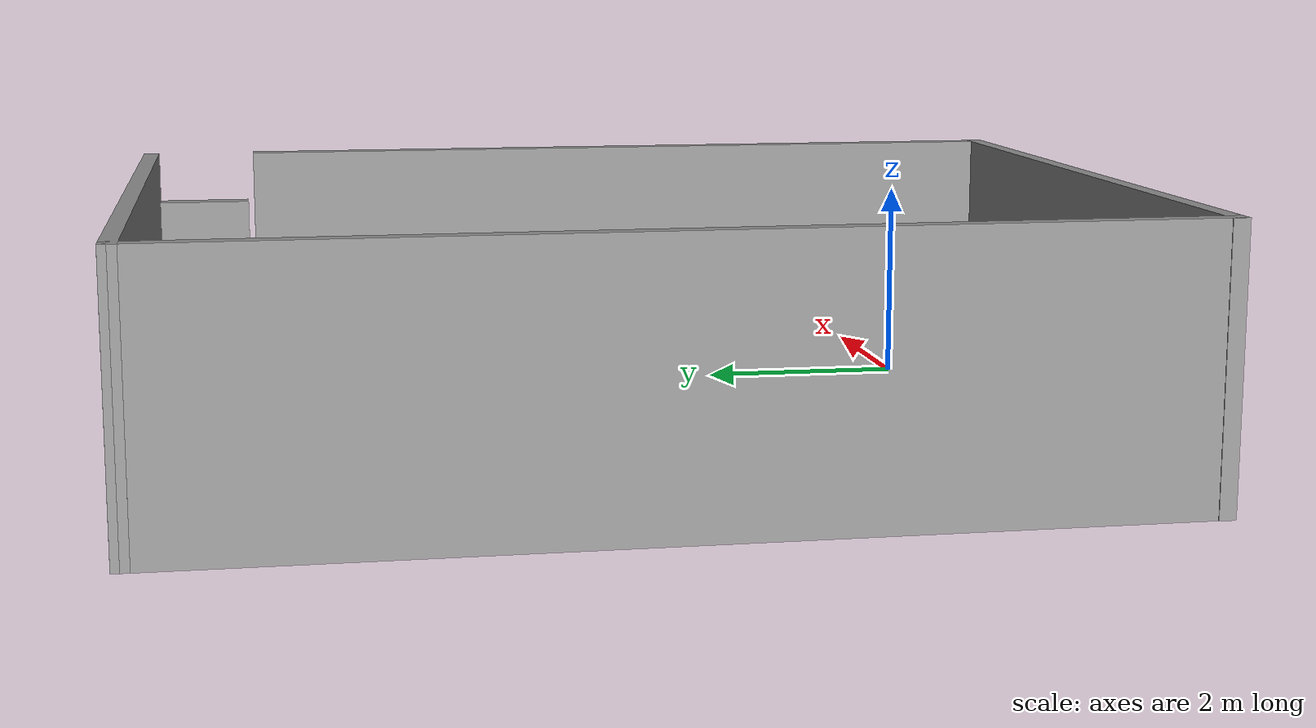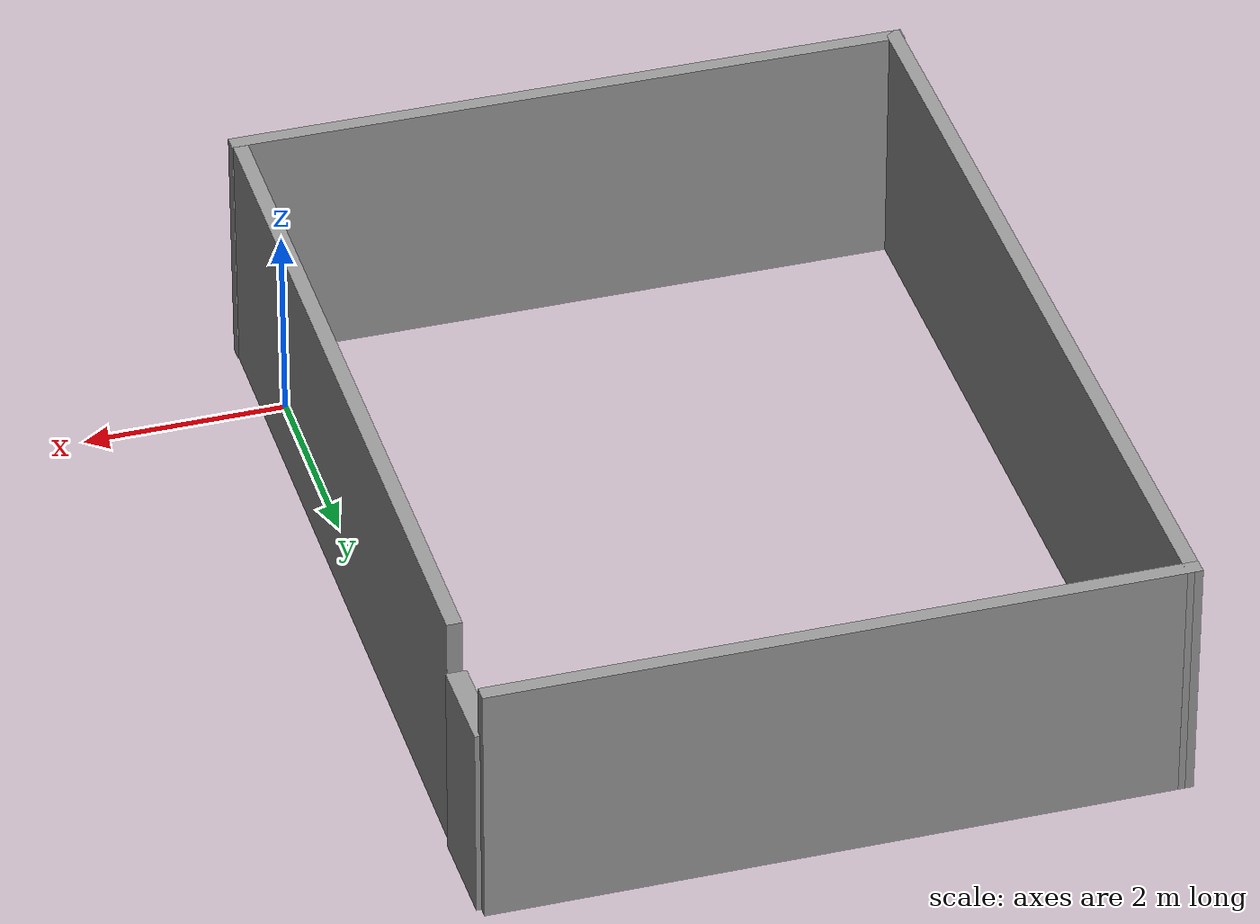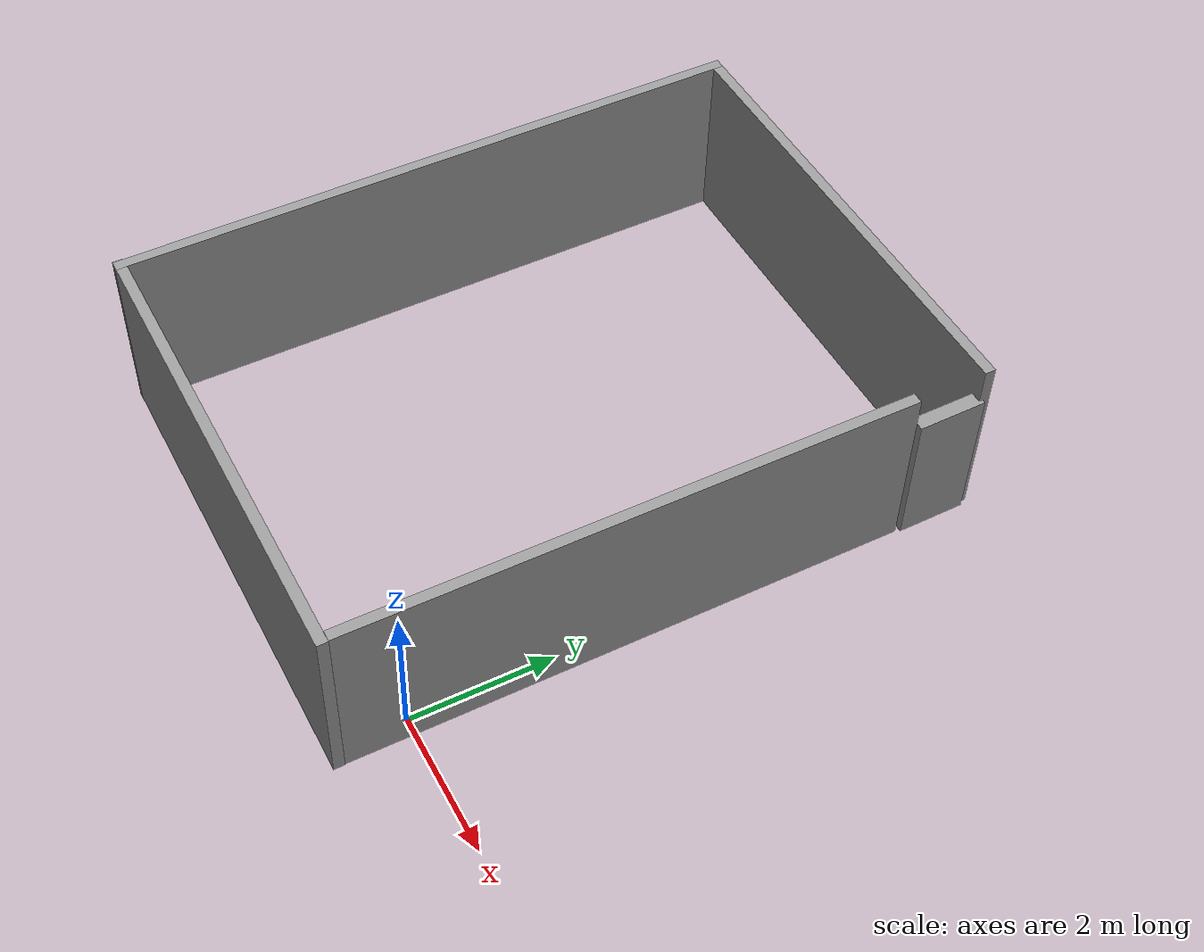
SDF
<?xml version='1.0'?>
<sdf version='1.6'>
  <model name='automation_lab'>
    <pose frame=''>-3.14961 3.44287 0 0 -0 0</pose>
    <link name='Door_0'>
      <collision name='Door_0_Collision'>
        <geometry>
          <box>
            <size>0.94854 0.2 2</size>
          </box>
        </geometry>
        <pose frame=''>0 0 1 0 -0 0</pose>
      </collision>
      <visual name='Door_0_Visual'>
        <pose frame=''>0 0 1 0 -0 0</pose>
        <geometry>
          <box>
            <size>0.94854 0.2 2</size>
          </box>
        </geometry>
        <material>
          <script>
            <uri>file://media/materials/scripts/gazebo.material</uri>
            <name>Gazebo/Grey</name>
          </script>
        </material>
      </visual>
      <pose frame=''>3.31019 3.93251 0 0 -0 1.58095</pose>
    </link>
    <link name='Wall_0'>
      <collision name='Wall_0_Collision'>
        <geometry>
          <box>
            <size>7.75 0.15 2.5</size>
          </box>
        </geometry>
        <pose frame=''>0 0 1.25 0 -0 0</pose>
      </collision>
      <visual name='Wall_0_Visual'>
        <pose frame=''>0 0 1.25 0 -0 0</pose>
        <geometry>
          <box>
            <size>7.75 0.15 2.5</size>
          </box>
        </geometry>
        <material>
          <script>
            <uri>file://media/materials/scripts/gazebo.material</uri>
            <name>Gazebo/Grey</name>
          </script>
          <ambient>1 1 1 1</ambient>
        </material>
        <meta>
          <layer>0</layer>
        </meta>
      </visual>
      <pose frame=''>3.30961 -0.477562 0 0 -0 1.5708</pose>
    </link>
    <link name='Wall_3'>
      <collision name='Wall_3_Collision'>
        <geometry>
          <box>
            <size>6.75 0.15 2.5</size>
          </box>
        </geometry>
        <pose frame=''>0 0 1.25 0 -0 0</pose>
      </collision>
      <visual name='Wall_3_Visual'>
        <pose frame=''>0 0 1.25 0 -0 0</pose>
        <geometry>
          <box>
            <size>6.75 0.15 2.5</size>
          </box>
        </geometry>
        <material>
          <script>
            <uri>file://media/materials/scripts/gazebo.material</uri>
            <name>Gazebo/Grey</name>
          </script>
          <ambient>1 1 1 1</ambient>
        </material>
        <meta>
          <layer>0</layer>
        </meta>
      </visual>
      <pose frame=''>-0.019677 4.42997 0 0 -0 3.14159</pose>
    </link>
    <link name='Wall_4'>
      <collision name='Wall_4_Collision'>
        <geometry>
          <box>
            <size>9.01001 0.15 2.5</size>
          </box>
        </geometry>
        <pose frame=''>0 0 1.25 0 -0 0</pose>
      </collision>
      <visual name='Wall_4_Visual'>
        <pose frame=''>0 0 1.25 0 -0 0</pose>
        <geometry>
          <box>
            <size>9.01001 0.15 2.5</size>
          </box>
        </geometry>
        <material>
          <script>
            <uri>file://media/materials/scripts/gazebo.material</uri>
            <name>Gazebo/Grey</name>
          </script>
          <ambient>1 1 1 1</ambient>
        </material>
        <meta>
          <layer>0</layer>
        </meta>
      </visual>
      <pose frame=''>-3.29482 -0 0 0 -0 -1.56519</pose>
    </link>
    <link name='Wall_5'>
      <collision name='Wall_5_Collision'>
        <geometry>
          <box>
            <size>6.75 0.15 2.5</size>
          </box>
        </geometry>
        <pose frame=''>0 0 1.25 0 -0 0</pose>
      </collision>
      <visual name='Wall_5_Visual'>
        <pose frame=''>0 0 1.25 0 -0 0</pose>
        <geometry>
          <box>
            <size>6.75 0.15 2.5</size>
          </box>
        </geometry>
        <material>
          <script>
            <uri>file://media/materials/scripts/gazebo.material</uri>
            <name>Gazebo/Grey</name>
          </script>
          <ambient>1 1 1 1</ambient>
        </material>
        <meta>
          <layer>0</layer>
        </meta>
      </visual>
      <pose frame=''>0.020097 -4.42997 0 0 -0 0</pose>
    </link>
    <static>1</static>
  </model>
</sdf>
